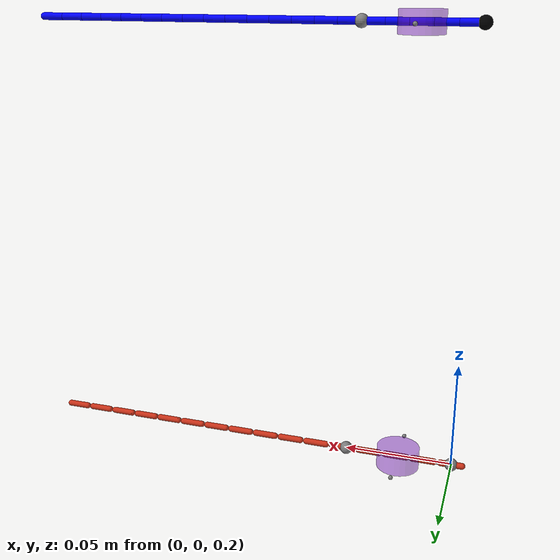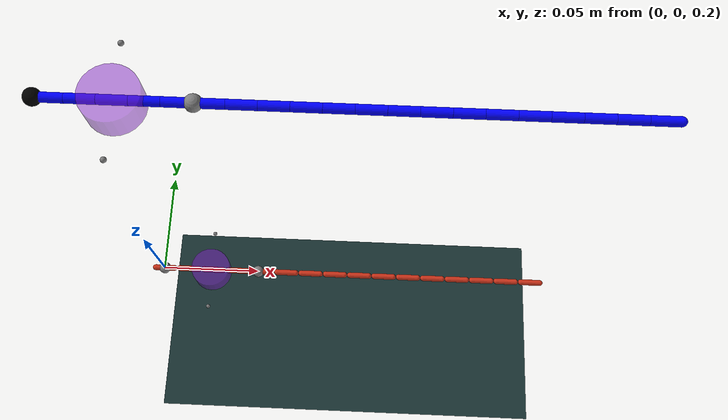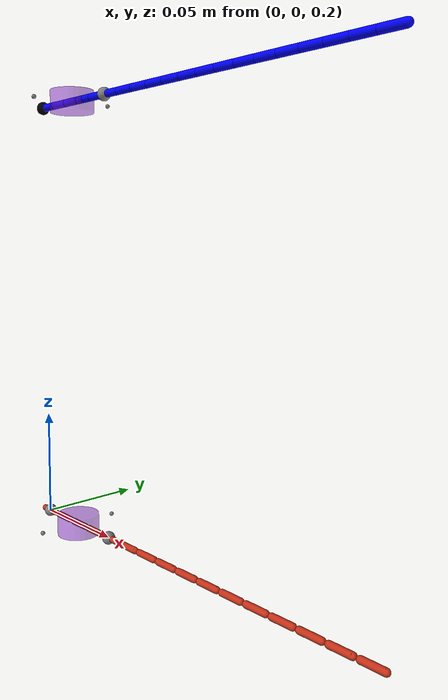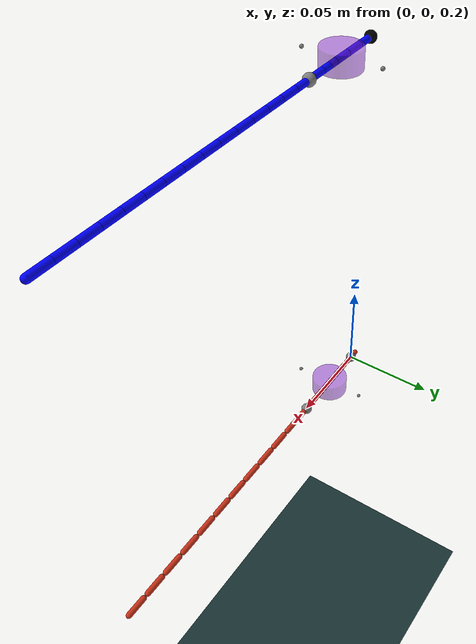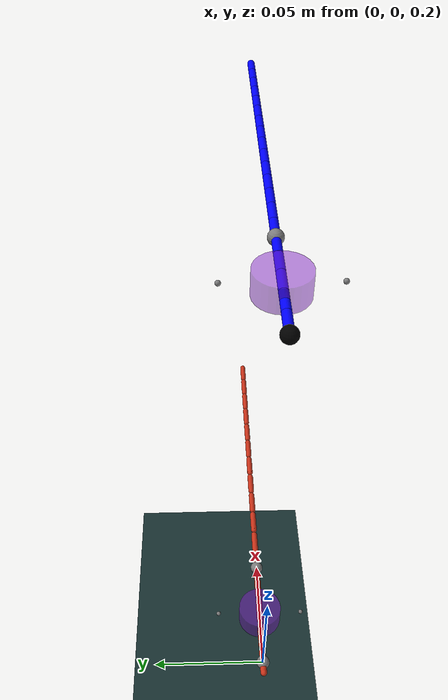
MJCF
<mujoco model="Whisker_strain_based">
  <compiler angle="radian" meshdir="asset/" texturedir="asset/"/>

  <option timestep="0.0002" gravity="0 0 0"/>

  <visual>
    <global elevation="0"/>
    <map stiffness="700" fogstart="1" fogend="15" zfar="40" haze="1" shadowscale="0.5"/>
    <rgba haze="0.15 0.25 0.35 1"/>
  </visual>

  <statistic meansize="0.05" extent="1" center="0 0 0.2"/>

  <default>
    <geom solref="0.01" solimp="0.95 0.99 0.0001" margin="0.01"/>
  </default>

  <extension>
    <plugin plugin="mujoco.elasticity.cable">
      <instance name="compositeSegCom">
        <config key="twist" value="1e10"/>
        <config key="bend" value="3.1e9"/>
        <config key="vmax" value="0.1"/>
      </instance>
    </plugin>
  </extension>

  <custom>
    <text name="composite_SegCom" data="rope_SegCom"/>
  </custom>

  <worldbody>
       <light diffuse=".4 .2 .4" specular="0.2 0.1 0.1" pos="0 0 2.0" dir="0 0 -1" castshadow="false"/>
    <light directional="true" diffuse=".8 .8 .8" specular="0.2 0.2 0.2" pos="0 0 4" dir="0 0 -1"/>
   <geom name="ground" size="0 0 1" type="plane" condim="1" pos="0 0 0" quat="1 0 0 0" rgba = "0.1 0.2 0.2 1"/>
    <body name="WhiskerBody" pos="0 0 0.2">

      <site name = "sitestartLS" type = "sphere" size="0.003" pos = "0 -0.0 0"></site>
      <site name = "sitestartRS" type = "sphere" size="0.003" pos = "0 +0.0 0."></site>

      <geom name="shoulderS" type="cylinder" pos="0.025 0 0" size=".01 .005" rgba=".5 .1 .8 .5" mass="0" group="1"/>
      <site name = "sidesiteRS" type = "sphere" size="0.001" pos = "0.025 +0.02 0"></site>
      <site name = "sidesiteLS" type = "sphere" size="0.001" pos = "0.025 -0.02 0"></site>

      <body name="Seg0">
        <geom name="Seg0_geom" size="0.0015 0.005" quat="0.707107 0 0.707107 0" type="capsule" mass="0.0001" rgba="0.8 0.2 0.1 1"/>

        <body name="Seg1">
          <joint name="hinge1" pos="0.0065 0 0" axis="0 0 1" stiffness="0.888" range="-1.5708 1.5708" damping="0.03"/>
          <geom name="Seg1_geom" size="0.0015 0.005" pos="0.013 0 0" quat="0.707107 0 0.707107 0" type="capsule" mass="0.0001" rgba="0.8 0.2 0.1 1"/>
          <body name="Seg2">
            <joint name="hinge2" pos="0.0195 0 0" axis="0 0 1" stiffness="0.888" range="-1.5708 1.5708" damping="0.03"/>
            <geom name="Seg2_geom" size="0.0015 0.005" pos="0.026 0 0" quat="0.707107 0 0.707107 0" type="capsule" mass="0.0001" rgba="0.8 0.2 0.1 1"/>

            <body name="Seg3">
              <joint name="hinge3" pos="0.0325 0 0" axis="0 0 1" stiffness="0.888" range="-1.5708 1.5708" damping="0.03"/>
              <geom name="Seg3_geom" size="0.0015 0.005" pos="0.039 0 0" quat="0.707107 0 0.707107 0" type="capsule" mass="0.0001" rgba="0.8 0.2 0.1 1"/>
              <site name = "siteendS" type = "sphere" size="0.003" pos = "0.05 0 0."></site>
              <body name="Seg4">
                <joint name="hinge4" pos="0.0455 0 0" axis="0 0 1" stiffness="0.888" range="-1.5708 1.5708" damping="0.03"/>
                <geom name="Seg4_geom" size="0.0015 0.005" pos="0.052 0 0" quat="0.707107 0 0.707107 0" type="capsule" mass="0.0001" rgba="0.8 0.2 0.1 1"/>
                <body name="Seg5">
                  <joint name="hinge5" pos="0.0585 0 0" axis="0 0 1" stiffness="0.888" range="-1.5708 1.5708" damping="0.03"/>
                  <geom name="Seg5_geom" size="0.0015 0.005" pos="0.065 0 0" quat="0.707107 0 0.707107 0" type="capsule" mass="0.0001" rgba="0.8 0.2 0.1 1"/>

                  <body name="Seg6">
                    <joint name="hinge6" pos="0.0715 0 0" axis="0 0 1" stiffness="0.888" range="-1.5708 1.5708" damping="0.03"/>
                    <geom name="Seg6_geom" size="0.0015 0.005" pos="0.078 0 0" quat="0.707107 0 0.707107 0" type="capsule" mass="0.0001" rgba="0.8 0.2 0.1 1"/>
                    <body name="Seg7">
                      <joint name="hinge7" pos="0.0845 0 0" axis="0 0 1" stiffness="0.888" range="-1.5708 1.5708" damping="0.03"/>
                      <geom name="Seg7_geom" size="0.0015 0.005" pos="0.091 0 0" quat="0.707107 0 0.707107 0" type="capsule" mass="0.0001" rgba="0.8 0.2 0.1 1"/>
                      <body name="Seg8">
                        <joint name="hinge8" pos="0.0975 0 0" axis="0 0 1" stiffness="0.888" range="-1.5708 1.5708" damping="0.03"/>
                        <geom name="Seg8_geom" size="0.0015 0.005" pos="0.104 0 0" quat="0.707107 0 0.707107 0" type="capsule" mass="0.0001" rgba="0.8 0.2 0.1 1"/>
                        <body name="Seg9">
                          <joint name="hinge9" pos="0.1105 0 0" axis="0 0 1" stiffness="0.888" range="-1.5708 1.5708" damping="0.03"/>
                          <geom name="Seg9_geom" size="0.0015 0.005" pos="0.117 0 0" quat="0.707107 0 0.707107 0" type="capsule" mass="0.0001" rgba="0.8 0.2 0.1 1"/>
                          <body name="Seg10">
                            <joint name="hinge10" pos="0.1235 0 0" axis="0 0 1" stiffness="0.888" range="-1.5708 1.5708" damping="0.03"/>
                            <geom name="Seg10_geom" size="0.0015 0.005" pos="0.13 0 0" quat="0.707107 0 0.707107 0" type="capsule" mass="0.0001" rgba="0.8 0.2 0.1 1"/>
                            <body name="Seg11">
                              <joint name="hinge11" pos="0.1365 0 0" axis="0 0 1" stiffness="0.888" range="-1.5708 1.5708" damping="0.03"/>
                              <geom name="Seg11_geom" size="0.0015 0.005" pos="0.143 0 0" quat="0.707107 0 0.707107 0" type="capsule" mass="0.0001" rgba="0.8 0.2 0.1 1"/>
                              <body name="Seg12">
                                <joint name="hinge12" pos="0.1495 0 0" axis="0 0 1" stiffness="0.888" range="-1.5708 1.5708" damping="0.03"/>
                                <geom name="Seg12_geom" size="0.0015 0.005" pos="0.156 0 0" quat="0.707107 0 0.707107 0" type="capsule" mass="0.0001" rgba="0.8 0.2 0.1 1"/>
                                <body name="Seg13">
                                  <joint name="hinge13" pos="0.1625 0 0" axis="0 0 1" stiffness="0.888" range="-1.5708 1.5708" damping="0.03"/>
                                  <geom name="Seg13_geom" size="0.0015 0.005" pos="0.169 0 0" quat="0.707107 0 0.707107 0" type="capsule" mass="0.0001" rgba="0.8 0.2 0.1 1"/>
                                  <body name="Seg14">
                                    <joint name="hinge14" pos="0.1755 0 0" axis="0 0 1" stiffness="0.888" range="-1.5708 1.5708" damping="0.03"/>
                                    <geom name="Seg14_geom" size="0.0015 0.005" pos="0.182 0 0" quat="0.707107 0 0.707107 0" type="capsule" mass="0.0001" rgba="0.8 0.2 0.1 1"/>
                                    <body name="Seg15">
                                      <joint name="hinge15" pos="0.1885 0 0" axis="0 0 1" stiffness="0.888" range="-1.5708 1.5708" damping="0.03"/>
                                      <geom name="Seg15_geom" size="0.0015 0.005" pos="0.195 0 0" quat="0.707107 0 0.707107 0" type="capsule" mass="0.0001" rgba="0.8 0.2 0.1 1"/>
                                    </body>
                                  </body>
                                </body>
                              </body>
                            </body>
                          </body>
                        </body>
                      </body>
                    </body>
                  </body>
                </body>
              </body>
            </body>
          </body>
        </body>
      </body>
    </body>

    <body name="Composit_whisker_nylon6/6" pos="0.000 0 0.4">

     <site name = "sitestartL" type = "sphere" size="0.003" pos = "0 -0.0 0" rgba = "0 0 0 1"></site>
     <site name = "sitestartR" type = "sphere" size="0.003" pos = "0 +0.0 0." rgba = "0 0 0 0"></site>

      <geom name="shoulder" type="cylinder" pos="0.025 0 0" size=".01 .005" rgba=".5 .1 .8 .5" mass="0" group="1"/>
      <site name = "sidesiteR" type = "sphere" size="0.001" pos = "0.025 +0.02 0"></site>
      <site name = "sidesiteL" type = "sphere" size="0.001" pos = "0.025 -0.02 0"></site>

      <body name="SegComB_first">
        <geom name="SegComG0" size="0.0017 0.005" pos="0.005 0 0" quat="0.707107 0 -0.707107 0" type="capsule" friction="1 0.1 0.1" solref="0.02" solimp="0.9 0.95 0.001" mass="0.0001" rgba="0 0 1 1"/>
        <site name="SegComS_first" pos="0 0 0" group="3"/>
        <plugin instance="compositeSegCom"/>
        <body name="SegComB_1" pos="0.01 0 0">
          <joint name="SegComJ_1" pos="0 0 0" type="ball" group="3" stiffness="1.931" actuatorfrclimited="false" damping="0.04"/>
          <geom name="SegComG1" size="0.0017 0.005" pos="0.005 0 0" quat="0.707107 0 -0.707107 0" type="capsule" friction="1 0.1 0.1" solref="0.02" solimp="0.9 0.95 0.001" mass="0.0001" rgba="0 0 1 1"/>
          <plugin instance="compositeSegCom"/>
          <body name="SegComB_2" pos="0.01 0 0">
            <joint name="SegComJ_2" pos="0 0 0" type="ball" group="3" stiffness="1.931" actuatorfrclimited="false" damping="0.04"/>
            <geom name="SegComG2" size="0.0017 0.005" pos="0.005 0 0" quat="0.707107 0 -0.707107 0" type="capsule" friction="1 0.1 0.1" solref="0.02" solimp="0.9 0.95 0.001" mass="0.0001" rgba="0 0 1 1"/>
            <plugin instance="compositeSegCom"/>
            <body name="SegComB_3" pos="0.01 0 0">
              <joint name="SegComJ_3" pos="0 0 0" type="ball" group="3" stiffness="1.931" actuatorfrclimited="false" damping="0.04"/>
              <geom name="SegComG3" size="0.0017 0.005" pos="0.005 0 0" quat="0.707107 0 -0.707107 0" type="capsule" friction="1 0.1 0.1" solref="0.02" solimp="0.9 0.95 0.001" mass="0.0001" rgba="0 0 1 1"/>
              <plugin instance="compositeSegCom"/>
              <body name="SegComB_4" pos="0.01 0 0">
                <joint name="SegComJ_4" pos="0 0 0" type="ball" group="3" stiffness="1.931" actuatorfrclimited="false" damping="0.04"/>
                <geom name="SegComG4" size="0.0017 0.005" pos="0.005 0 0" quat="0.707107 0 -0.707107 0" type="capsule" friction="1 0.1 0.1" solref="0.02" solimp="0.9 0.95 0.001" mass="0.0001" rgba="0 0 1 1"/>
                <plugin instance="compositeSegCom"/>
                <body name="SegComB_5" pos="0.01 0 0">
                  <joint name="SegComJ_5" pos="0 0 0" type="ball" group="3" stiffness="1.931" actuatorfrclimited="false" damping="0.04"/>
                  <geom name="SegComG5" size="0.0017 0.005" pos="0.005 0 0" quat="0.707107 0 -0.707107 0" type="capsule" friction="1 0.1 0.1" solref="0.02" solimp="0.9 0.95 0.001" mass="0.0001" rgba="0 0 1 1"/>
                 <site name = "siteend" type = "sphere" size="0.003" pos = "0.0 0 0."></site>
                  <plugin instance="compositeSegCom"/>
                  <body name="SegComB_6" pos="0.01 0 0">
                    <joint name="SegComJ_6" pos="0 0 0" type="ball" group="3" stiffness="1.931" actuatorfrclimited="false" damping="0.04"/>
                    <geom name="SegComG6" size="0.0017 0.005" pos="0.005 0 0" quat="0.707107 0 -0.707107 0" type="capsule" friction="1 0.1 0.1" solref="0.02" solimp="0.9 0.95 0.001" mass="0.0001" rgba="0 0 1 1"/>
                    <plugin instance="compositeSegCom"/>
                    <body name="SegComB_7" pos="0.01 0 0">
                      <joint name="SegComJ_7" pos="0 0 0" type="ball" group="3" stiffness="1.931" actuatorfrclimited="false" damping="0.04"/>
                      <geom name="SegComG7" size="0.0017 0.005" pos="0.005 0 0" quat="0.707107 0 -0.707107 0" type="capsule" friction="1 0.1 0.1" solref="0.02" solimp="0.9 0.95 0.001" mass="0.0001" rgba="0 0 1 1"/>
                      <plugin instance="compositeSegCom"/>
                      <body name="SegComB_8" pos="0.01 0 0">
                        <joint name="SegComJ_8" pos="0 0 0" type="ball" group="3" stiffness="1.931" actuatorfrclimited="false" damping="0.04"/>
                        <geom name="SegComG8" size="0.0017 0.005" pos="0.005 0 0" quat="0.707107 0 -0.707107 0" type="capsule" friction="1 0.1 0.1" solref="0.02" solimp="0.9 0.95 0.001" mass="0.0001" rgba="0 0 1 1"/>
                        <plugin instance="compositeSegCom"/>
                        <body name="SegComB_9" pos="0.01 0 0">
                          <joint name="SegComJ_9" pos="0 0 0" type="ball" group="3" stiffness="1.931" actuatorfrclimited="false" damping="0.04"/>
                          <geom name="SegComG9" size="0.0017 0.005" pos="0.005 0 0" quat="0.707107 0 -0.707107 0" type="capsule" friction="1 0.1 0.1" solref="0.02" solimp="0.9 0.95 0.001" mass="0.0001" rgba="0 0 1 1"/>
                                                    <plugin instance="compositeSegCom"/>
                          <body name="SegComB_10" pos="0.01 0 0">
                            <joint name="SegComJ_10" pos="0 0 0" type="ball" group="3" stiffness="1.931" actuatorfrclimited="false" damping="0.04"/>
                            <geom name="SegComG10" size="0.0017 0.005" pos="0.005 0 0" quat="0.707107 0 -0.707107 0" type="capsule" friction="1 0.1 0.1" solref="0.02" solimp="0.9 0.95 0.001" mass="0.0001" rgba="0 0 1 1"/>
                            <plugin instance="compositeSegCom"/>
                            <body name="SegComB_11" pos="0.01 0 0">
                              <joint name="SegComJ_11" pos="0 0 0" type="ball" group="3" stiffness="1.931" actuatorfrclimited="false" damping="0.04"/>
                              <geom name="SegComG11" size="0.0017 0.005" pos="0.005 0 0" quat="0.707107 0 -0.707107 0" type="capsule" friction="1 0.1 0.1" solref="0.02" solimp="0.9 0.95 0.001" mass="0.0001" rgba="0 0 1 1"/>
                              <plugin instance="compositeSegCom"/>
                              <body name="SegComB_12" pos="0.01 0 0">
                                <joint name="SegComJ_12" pos="0 0 0" type="ball" group="3" stiffness="1.931" actuatorfrclimited="false" damping="0.04"/>
                                <geom name="SegComG12" size="0.0017 0.005" pos="0.005 0 0" quat="0.707107 0 -0.707107 0" type="capsule" friction="1 0.1 0.1" solref="0.02" solimp="0.9 0.95 0.001" mass="0.0001" rgba="0 0 1 1"/>
                                <plugin instance="compositeSegCom"/>
                                <body name="SegComB_13" pos="0.01 0 0">
                                  <joint name="SegComJ_13" pos="0 0 0" type="ball" group="3" stiffness="1.931" actuatorfrclimited="false" damping="0.04"/>
                                  <geom name="SegComG13" size="0.0017 0.005" pos="0.005 0 0" quat="0.707107 0 -0.707107 0" type="capsule" friction="1 0.1 0.1" solref="0.02" solimp="0.9 0.95 0.001" mass="0.0001" rgba="0 0 1 1"/>
                                  <plugin instance="compositeSegCom"/>
                                  <body name="SegComB_14" pos="0.01 0 0">
                                    <joint name="SegComJ_14" pos="0 0 0" type="ball" group="3" stiffness="1.931" actuatorfrclimited="false" damping="0.04"/>
                                    <geom name="SegComG14" size="0.0017 0.005" pos="0.005 0 0" quat="0.707107 0 -0.707107 0" type="capsule" friction="1 0.1 0.1" solref="0.02" solimp="0.9 0.95 0.001" mass="0.0001" rgba="0 0 1 1"/>
                                    <plugin instance="compositeSegCom"/>
                                    <body name="SegComB_15" pos="0.01 0 0">
                                      <joint name="SegComJ_15" pos="0 0 0" type="ball" group="3" stiffness="1.931" actuatorfrclimited="false" damping="0.04"/>
                                      <geom name="SegComG15" size="0.0017 0.005" pos="0.005 0 0" quat="0.707107 0 -0.707107 0" type="capsule" friction="1 0.1 0.1" solref="0.02" solimp="0.9 0.95 0.001" mass="0.0001" rgba="0 0 1 1"/>
                                      <plugin instance="compositeSegCom"/>
                                      <body name="SegComB_16" pos="0.00999999 0 0">
                                        <joint name="SegComJ_16" pos="0 0 0" type="ball" group="3" stiffness="1.931" actuatorfrclimited="false" damping="0.04"/>
                                        <geom name="SegComG16" size="0.0017 0.005" pos="0.005 0 0" quat="0.707107 0 -0.707107 0" type="capsule" friction="1 0.1 0.1" solref="0.02" solimp="0.9 0.95 0.001" mass="0.0001" rgba="0 0 1 1"/>
                                        <plugin instance="compositeSegCom"/>
                                        <body name="SegComB_17" pos="0.01 0 0">
                                          <joint name="SegComJ_17" pos="0 0 0" type="ball" group="3" stiffness="1.931" actuatorfrclimited="false" damping="0.04"/>
                                          <geom name="SegComG17" size="0.0017 0.005" pos="0.005 0 0" quat="0.707107 0 -0.707107 0" type="capsule" friction="1 0.1 0.1" solref="0.02" solimp="0.9 0.95 0.001" mass="0.0001" rgba="0 0 1 1"/>

                                          <plugin instance="compositeSegCom"/>
                                          <body name="SegComB_18" pos="0.01 0 0">
                                            <joint name="SegComJ_18" pos="0 0 0" type="ball" group="3" stiffness="1.931" actuatorfrclimited="false" damping="0.04"/>
                                            <geom name="SegComG18" size="0.0017 0.005" pos="0.005 0 0" quat="0.707107 0 -0.707107 0" type="capsule" friction="1 0.1 0.1" solref="0.02" solimp="0.9 0.95 0.001" mass="0.0001" rgba="0 0 1 1"/>
                                            <plugin instance="compositeSegCom"/>
                                            <body name="SegComB_last" pos="0.00999999 0 0">
                                              <joint name="SegComJ_last" pos="0 0 0" type="ball" group="3" stiffness="1.931" actuatorfrclimited="false" damping="0.04"/>
                                              <geom name="SegComG19" size="0.0017 0.005" pos="0.005 0 0" quat="0.707107 0 -0.707107 0" type="capsule" friction="1 0.1 0.1" solref="0.02" solimp="0.9 0.95 0.001" mass="0.0001" rgba="0 0 1 1"/>
                                              <site name="SegComS_last" pos="0.01 0 0" group="3"/>
                                              <plugin instance="compositeSegCom"/>
                                            </body>
                                          </body>
                                        </body>
                                      </body>
                                    </body>
                                  </body>
                                </body>
                              </body>
                            </body>
                          </body>
                        </body>
                      </body>
                    </body>
                  </body>
                </body>
              </body>
            </body>
          </body>
        </body>
      </body>
    </body>

  </worldbody>

  <contact>
    <exclude body1="SegComB_first" body2="SegComB_1"/>
    <exclude body1="SegComB_1" body2="SegComB_2"/>
    <exclude body1="SegComB_2" body2="SegComB_3"/>
    <exclude body1="SegComB_3" body2="SegComB_4"/>
    <exclude body1="SegComB_4" body2="SegComB_5"/>
    <exclude body1="SegComB_5" body2="SegComB_6"/>
    <exclude body1="SegComB_6" body2="SegComB_7"/>
    <exclude body1="SegComB_7" body2="SegComB_8"/>
    <exclude body1="SegComB_8" body2="SegComB_9"/>
    <exclude body1="SegComB_9" body2="SegComB_10"/>
    <exclude body1="SegComB_10" body2="SegComB_11"/>
    <exclude body1="SegComB_11" body2="SegComB_12"/>
    <exclude body1="SegComB_12" body2="SegComB_13"/>
    <exclude body1="SegComB_13" body2="SegComB_14"/>
    <exclude body1="SegComB_14" body2="SegComB_15"/>
    <exclude body1="SegComB_15" body2="SegComB_16"/>
    <exclude body1="SegComB_16" body2="SegComB_17"/>
    <exclude body1="SegComB_17" body2="SegComB_18"/>
    <exclude body1="SegComB_18" body2="SegComB_last"/>
  </contact>
    <tendon>
    <spatial name="tendonL" width="0.001" limited="true" range="0 0.005" damping="1" stiffness="0.001">
      <site site="sitestartL"/>
      <geom geom="shoulder" sidesite = "sidesiteL"/>
      <site site="siteend"/>
    </spatial>

   <spatial name="tendonR" width="0.001" limited="true" range="0 0.005" damping="1" stiffness = "0.001">
      <site site="sitestartR"/>
      <geom geom="shoulder" sidesite="sidesiteR"/>
      <site site="siteend"/>
    </spatial>

      <spatial name="tendonRS" width="0.001" range="0 0.005"  damping="1" stiffness = "0">
      <site site="sitestartRS"/>
      <geom geom="shoulderS" sidesite="sidesiteRS"/>
      <site site="siteendS"/></spatial>

  <spatial name="tendonLS" width="0.001" range="0 0.005" damping="1" stiffness="0.">
      <site site="sitestartLS"/>
      <geom geom="shoulderS" sidesite = "sidesiteLS"/>
      <site site="siteendS"/>
    </spatial>

    </tendon>

  <sensor>
    <tendonpos name="tendon_pos_sensorL" tendon="tendonL"/>
    <tendonpos name="tendon_pos_sensorR" tendon="tendonR"/><!--not counting translationsla velocity-->
    <tendonlimitfrc name ="t_l_frcL" tendon = "tendonL"></tendonlimitfrc>
    <tendonlimitfrc name ="t_l_frcR" tendon = "tendonR"></tendonlimitfrc>

    <tendonpos name="tendon_pos_sensorLS" tendon="tendonLS"/>
    <tendonpos name="tendon_pos_sensorRS" tendon="tendonRS"/><!--not counting translationsla velocity-->
    <tendonlimitfrc name ="t_l_frcLS" tendon = "tendonLS"></tendonlimitfrc>
    <tendonlimitfrc name ="t_l_frcRS" tendon = "tendonRS"></tendonlimitfrc>
  </sensor>
</mujoco>
